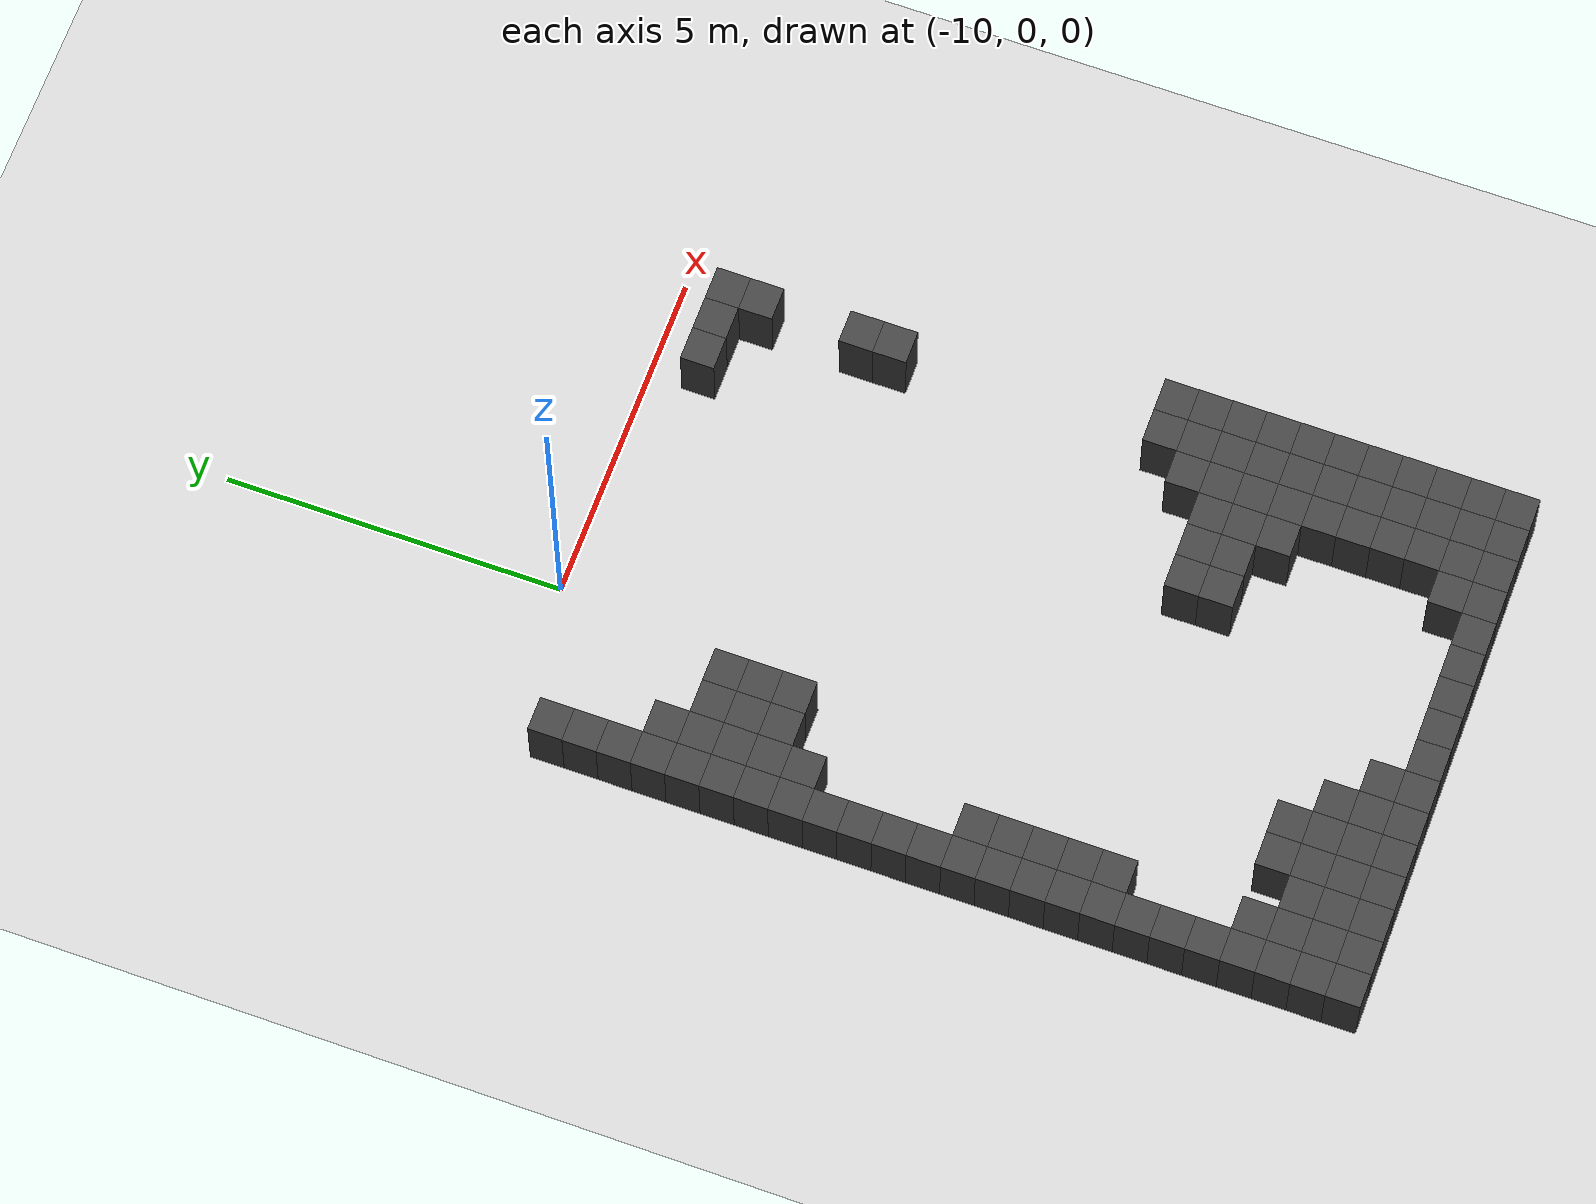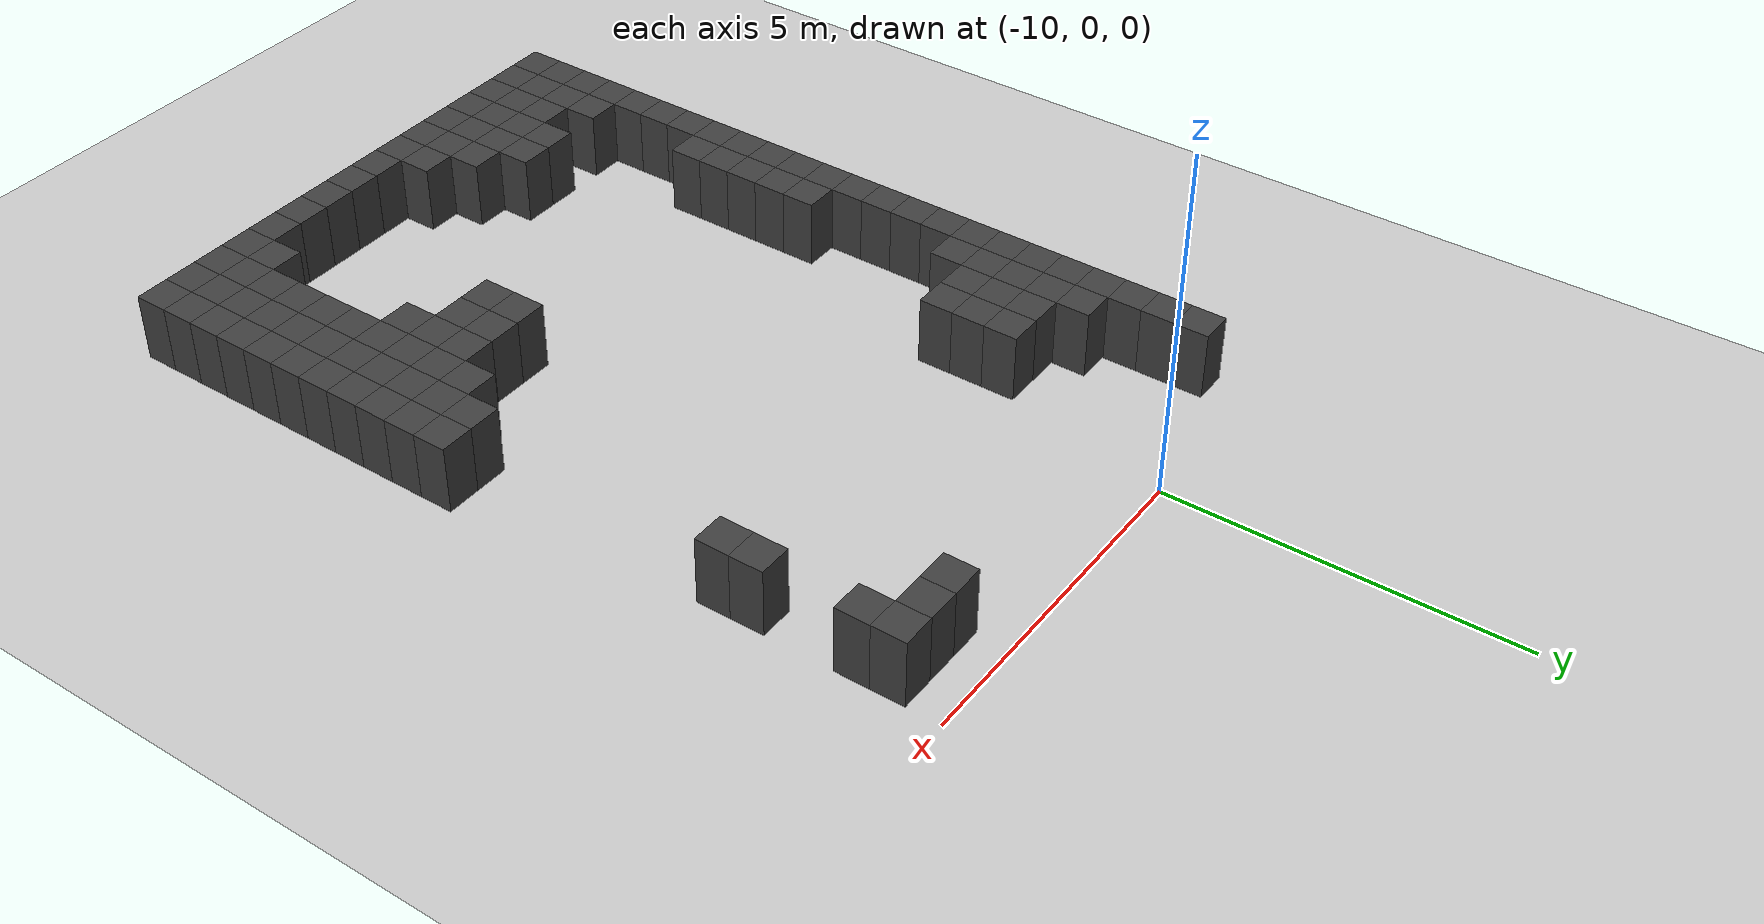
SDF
<sdf version="1.7">
 <world name="map_9405">
  <model name="ground_plane">
   <static>true</static>
   <link name="link">
    <collision name="collision">
     <geometry><plane><normal>0 0 1</normal><size>200 200</size></plane></geometry>
    </collision>
    <visual name="visual">
     <geometry><plane><normal>0 0 1</normal><size>200 200</size></plane></geometry>
     <material><ambient>0.8 0.8 0.8 1</ambient><diffuse>0.8 0.8 0.8 1</diffuse></material>
    </visual>
   </link>
  </model>
  <model name="maze_environment">
   <static>true</static>
   <link name="wall_449">
    <pose>-12.250 -0.750 0.500 0 0 0</pose>
    <collision name="col"><geometry><box><size>0.5 0.5 1.0</size></box></geometry></collision>
    <visual name="vis">
     <geometry><box><size>0.5 0.5 1.0</size></box></geometry>
     <material><ambient>0.15 0.15 0.15 1</ambient><diffuse>0.25 0.25 0.25 1</diffuse></material>
    </visual>
   </link>
   <link name="wall_450">
    <pose>-6.250 -0.750 0.500 0 0 0</pose>
    <collision name="col"><geometry><box><size>0.5 0.5 1.0</size></box></geometry></collision>
    <visual name="vis">
     <geometry><box><size>0.5 0.5 1.0</size></box></geometry>
     <material><ambient>0.15 0.15 0.15 1</ambient><diffuse>0.25 0.25 0.25 1</diffuse></material>
    </visual>
   </link>
   <link name="wall_451">
    <pose>-5.750 -0.750 0.500 0 0 0</pose>
    <collision name="col"><geometry><box><size>0.5 0.5 1.0</size></box></geometry></collision>
    <visual name="vis">
     <geometry><box><size>0.5 0.5 1.0</size></box></geometry>
     <material><ambient>0.15 0.15 0.15 1</ambient><diffuse>0.25 0.25 0.25 1</diffuse></material>
    </visual>
   </link>
   <link name="wall_452">
    <pose>-5.250 -0.750 0.500 0 0 0</pose>
    <collision name="col"><geometry><box><size>0.5 0.5 1.0</size></box></geometry></collision>
    <visual name="vis">
     <geometry><box><size>0.5 0.5 1.0</size></box></geometry>
     <material><ambient>0.15 0.15 0.15 1</ambient><diffuse>0.25 0.25 0.25 1</diffuse></material>
    </visual>
   </link>
   <link name="wall_477">
    <pose>-12.250 -1.250 0.500 0 0 0</pose>
    <collision name="col"><geometry><box><size>0.5 0.5 1.0</size></box></geometry></collision>
    <visual name="vis">
     <geometry><box><size>0.5 0.5 1.0</size></box></geometry>
     <material><ambient>0.15 0.15 0.15 1</ambient><diffuse>0.25 0.25 0.25 1</diffuse></material>
    </visual>
   </link>
   <link name="wall_478">
    <pose>-5.250 -1.250 0.500 0 0 0</pose>
    <collision name="col"><geometry><box><size>0.5 0.5 1.0</size></box></geometry></collision>
    <visual name="vis">
     <geometry><box><size>0.5 0.5 1.0</size></box></geometry>
     <material><ambient>0.15 0.15 0.15 1</ambient><diffuse>0.25 0.25 0.25 1</diffuse></material>
    </visual>
   </link>
   <link name="wall_501">
    <pose>-12.250 -1.750 0.500 0 0 0</pose>
    <collision name="col"><geometry><box><size>0.5 0.5 1.0</size></box></geometry></collision>
    <visual name="vis">
     <geometry><box><size>0.5 0.5 1.0</size></box></geometry>
     <material><ambient>0.15 0.15 0.15 1</ambient><diffuse>0.25 0.25 0.25 1</diffuse></material>
    </visual>
   </link>
   <link name="wall_517">
    <pose>-12.250 -2.250 0.500 0 0 0</pose>
    <collision name="col"><geometry><box><size>0.5 0.5 1.0</size></box></geometry></collision>
    <visual name="vis">
     <geometry><box><size>0.5 0.5 1.0</size></box></geometry>
     <material><ambient>0.15 0.15 0.15 1</ambient><diffuse>0.25 0.25 0.25 1</diffuse></material>
    </visual>
   </link>
   <link name="wall_518">
    <pose>-11.750 -2.250 0.500 0 0 0</pose>
    <collision name="col"><geometry><box><size>0.5 0.5 1.0</size></box></geometry></collision>
    <visual name="vis">
     <geometry><box><size>0.5 0.5 1.0</size></box></geometry>
     <material><ambient>0.15 0.15 0.15 1</ambient><diffuse>0.25 0.25 0.25 1</diffuse></material>
    </visual>
   </link>
   <link name="wall_526">
    <pose>-12.250 -2.750 0.500 0 0 0</pose>
    <collision name="col"><geometry><box><size>0.5 0.5 1.0</size></box></geometry></collision>
    <visual name="vis">
     <geometry><box><size>0.5 0.5 1.0</size></box></geometry>
     <material><ambient>0.15 0.15 0.15 1</ambient><diffuse>0.25 0.25 0.25 1</diffuse></material>
    </visual>
   </link>
   <link name="wall_527">
    <pose>-11.750 -2.750 0.500 0 0 0</pose>
    <collision name="col"><geometry><box><size>0.5 0.5 1.0</size></box></geometry></collision>
    <visual name="vis">
     <geometry><box><size>0.5 0.5 1.0</size></box></geometry>
     <material><ambient>0.15 0.15 0.15 1</ambient><diffuse>0.25 0.25 0.25 1</diffuse></material>
    </visual>
   </link>
   <link name="wall_528">
    <pose>-11.250 -2.750 0.500 0 0 0</pose>
    <collision name="col"><geometry><box><size>0.5 0.5 1.0</size></box></geometry></collision>
    <visual name="vis">
     <geometry><box><size>0.5 0.5 1.0</size></box></geometry>
     <material><ambient>0.15 0.15 0.15 1</ambient><diffuse>0.25 0.25 0.25 1</diffuse></material>
    </visual>
   </link>
   <link name="wall_529">
    <pose>-10.750 -2.750 0.500 0 0 0</pose>
    <collision name="col"><geometry><box><size>0.5 0.5 1.0</size></box></geometry></collision>
    <visual name="vis">
     <geometry><box><size>0.5 0.5 1.0</size></box></geometry>
     <material><ambient>0.15 0.15 0.15 1</ambient><diffuse>0.25 0.25 0.25 1</diffuse></material>
    </visual>
   </link>
   <link name="wall_530">
    <pose>-5.250 -2.750 0.500 0 0 0</pose>
    <collision name="col"><geometry><box><size>0.5 0.5 1.0</size></box></geometry></collision>
    <visual name="vis">
     <geometry><box><size>0.5 0.5 1.0</size></box></geometry>
     <material><ambient>0.15 0.15 0.15 1</ambient><diffuse>0.25 0.25 0.25 1</diffuse></material>
    </visual>
   </link>
   <link name="wall_544">
    <pose>-12.250 -3.250 0.500 0 0 0</pose>
    <collision name="col"><geometry><box><size>0.5 0.5 1.0</size></box></geometry></collision>
    <visual name="vis">
     <geometry><box><size>0.5 0.5 1.0</size></box></geometry>
     <material><ambient>0.15 0.15 0.15 1</ambient><diffuse>0.25 0.25 0.25 1</diffuse></material>
    </visual>
   </link>
   <link name="wall_545">
    <pose>-11.750 -3.250 0.500 0 0 0</pose>
    <collision name="col"><geometry><box><size>0.5 0.5 1.0</size></box></geometry></collision>
    <visual name="vis">
     <geometry><box><size>0.5 0.5 1.0</size></box></geometry>
     <material><ambient>0.15 0.15 0.15 1</ambient><diffuse>0.25 0.25 0.25 1</diffuse></material>
    </visual>
   </link>
   <link name="wall_546">
    <pose>-11.250 -3.250 0.500 0 0 0</pose>
    <collision name="col"><geometry><box><size>0.5 0.5 1.0</size></box></geometry></collision>
    <visual name="vis">
     <geometry><box><size>0.5 0.5 1.0</size></box></geometry>
     <material><ambient>0.15 0.15 0.15 1</ambient><diffuse>0.25 0.25 0.25 1</diffuse></material>
    </visual>
   </link>
   <link name="wall_547">
    <pose>-10.750 -3.250 0.500 0 0 0</pose>
    <collision name="col"><geometry><box><size>0.5 0.5 1.0</size></box></geometry></collision>
    <visual name="vis">
     <geometry><box><size>0.5 0.5 1.0</size></box></geometry>
     <material><ambient>0.15 0.15 0.15 1</ambient><diffuse>0.25 0.25 0.25 1</diffuse></material>
    </visual>
   </link>
   <link name="wall_548">
    <pose>-5.250 -3.250 0.500 0 0 0</pose>
    <collision name="col"><geometry><box><size>0.5 0.5 1.0</size></box></geometry></collision>
    <visual name="vis">
     <geometry><box><size>0.5 0.5 1.0</size></box></geometry>
     <material><ambient>0.15 0.15 0.15 1</ambient><diffuse>0.25 0.25 0.25 1</diffuse></material>
    </visual>
   </link>
   <link name="wall_561">
    <pose>-12.250 -3.750 0.500 0 0 0</pose>
    <collision name="col"><geometry><box><size>0.5 0.5 1.0</size></box></geometry></collision>
    <visual name="vis">
     <geometry><box><size>0.5 0.5 1.0</size></box></geometry>
     <material><ambient>0.15 0.15 0.15 1</ambient><diffuse>0.25 0.25 0.25 1</diffuse></material>
    </visual>
   </link>
   <link name="wall_562">
    <pose>-11.750 -3.750 0.500 0 0 0</pose>
    <collision name="col"><geometry><box><size>0.5 0.5 1.0</size></box></geometry></collision>
    <visual name="vis">
     <geometry><box><size>0.5 0.5 1.0</size></box></geometry>
     <material><ambient>0.15 0.15 0.15 1</ambient><diffuse>0.25 0.25 0.25 1</diffuse></material>
    </visual>
   </link>
   <link name="wall_563">
    <pose>-11.250 -3.750 0.500 0 0 0</pose>
    <collision name="col"><geometry><box><size>0.5 0.5 1.0</size></box></geometry></collision>
    <visual name="vis">
     <geometry><box><size>0.5 0.5 1.0</size></box></geometry>
     <material><ambient>0.15 0.15 0.15 1</ambient><diffuse>0.25 0.25 0.25 1</diffuse></material>
    </visual>
   </link>
   <link name="wall_564">
    <pose>-10.750 -3.750 0.500 0 0 0</pose>
    <collision name="col"><geometry><box><size>0.5 0.5 1.0</size></box></geometry></collision>
    <visual name="vis">
     <geometry><box><size>0.5 0.5 1.0</size></box></geometry>
     <material><ambient>0.15 0.15 0.15 1</ambient><diffuse>0.25 0.25 0.25 1</diffuse></material>
    </visual>
   </link>
   <link name="wall_578">
    <pose>-12.250 -4.250 0.500 0 0 0</pose>
    <collision name="col"><geometry><box><size>0.5 0.5 1.0</size></box></geometry></collision>
    <visual name="vis">
     <geometry><box><size>0.5 0.5 1.0</size></box></geometry>
     <material><ambient>0.15 0.15 0.15 1</ambient><diffuse>0.25 0.25 0.25 1</diffuse></material>
    </visual>
   </link>
   <link name="wall_579">
    <pose>-11.750 -4.250 0.500 0 0 0</pose>
    <collision name="col"><geometry><box><size>0.5 0.5 1.0</size></box></geometry></collision>
    <visual name="vis">
     <geometry><box><size>0.5 0.5 1.0</size></box></geometry>
     <material><ambient>0.15 0.15 0.15 1</ambient><diffuse>0.25 0.25 0.25 1</diffuse></material>
    </visual>
   </link>
   <link name="wall_592">
    <pose>-12.250 -4.750 0.500 0 0 0</pose>
    <collision name="col"><geometry><box><size>0.5 0.5 1.0</size></box></geometry></collision>
    <visual name="vis">
     <geometry><box><size>0.5 0.5 1.0</size></box></geometry>
     <material><ambient>0.15 0.15 0.15 1</ambient><diffuse>0.25 0.25 0.25 1</diffuse></material>
    </visual>
   </link>
   <link name="wall_603">
    <pose>-12.250 -5.250 0.500 0 0 0</pose>
    <collision name="col"><geometry><box><size>0.5 0.5 1.0</size></box></geometry></collision>
    <visual name="vis">
     <geometry><box><size>0.5 0.5 1.0</size></box></geometry>
     <material><ambient>0.15 0.15 0.15 1</ambient><diffuse>0.25 0.25 0.25 1</diffuse></material>
    </visual>
   </link>
   <link name="wall_613">
    <pose>-12.250 -5.750 0.500 0 0 0</pose>
    <collision name="col"><geometry><box><size>0.5 0.5 1.0</size></box></geometry></collision>
    <visual name="vis">
     <geometry><box><size>0.5 0.5 1.0</size></box></geometry>
     <material><ambient>0.15 0.15 0.15 1</ambient><diffuse>0.25 0.25 0.25 1</diffuse></material>
    </visual>
   </link>
   <link name="wall_624">
    <pose>-12.250 -6.250 0.500 0 0 0</pose>
    <collision name="col"><geometry><box><size>0.5 0.5 1.0</size></box></geometry></collision>
    <visual name="vis">
     <geometry><box><size>0.5 0.5 1.0</size></box></geometry>
     <material><ambient>0.15 0.15 0.15 1</ambient><diffuse>0.25 0.25 0.25 1</diffuse></material>
    </visual>
   </link>
   <link name="wall_638">
    <pose>-12.250 -6.750 0.500 0 0 0</pose>
    <collision name="col"><geometry><box><size>0.5 0.5 1.0</size></box></geometry></collision>
    <visual name="vis">
     <geometry><box><size>0.5 0.5 1.0</size></box></geometry>
     <material><ambient>0.15 0.15 0.15 1</ambient><diffuse>0.25 0.25 0.25 1</diffuse></material>
    </visual>
   </link>
   <link name="wall_639">
    <pose>-11.750 -6.750 0.500 0 0 0</pose>
    <collision name="col"><geometry><box><size>0.5 0.5 1.0</size></box></geometry></collision>
    <visual name="vis">
     <geometry><box><size>0.5 0.5 1.0</size></box></geometry>
     <material><ambient>0.15 0.15 0.15 1</ambient><diffuse>0.25 0.25 0.25 1</diffuse></material>
    </visual>
   </link>
   <link name="wall_656">
    <pose>-12.250 -7.250 0.500 0 0 0</pose>
    <collision name="col"><geometry><box><size>0.5 0.5 1.0</size></box></geometry></collision>
    <visual name="vis">
     <geometry><box><size>0.5 0.5 1.0</size></box></geometry>
     <material><ambient>0.15 0.15 0.15 1</ambient><diffuse>0.25 0.25 0.25 1</diffuse></material>
    </visual>
   </link>
   <link name="wall_657">
    <pose>-11.750 -7.250 0.500 0 0 0</pose>
    <collision name="col"><geometry><box><size>0.5 0.5 1.0</size></box></geometry></collision>
    <visual name="vis">
     <geometry><box><size>0.5 0.5 1.0</size></box></geometry>
     <material><ambient>0.15 0.15 0.15 1</ambient><diffuse>0.25 0.25 0.25 1</diffuse></material>
    </visual>
   </link>
   <link name="wall_658">
    <pose>-5.250 -7.250 0.500 0 0 0</pose>
    <collision name="col"><geometry><box><size>0.5 0.5 1.0</size></box></geometry></collision>
    <visual name="vis">
     <geometry><box><size>0.5 0.5 1.0</size></box></geometry>
     <material><ambient>0.15 0.15 0.15 1</ambient><diffuse>0.25 0.25 0.25 1</diffuse></material>
    </visual>
   </link>
   <link name="wall_659">
    <pose>-4.750 -7.250 0.500 0 0 0</pose>
    <collision name="col"><geometry><box><size>0.5 0.5 1.0</size></box></geometry></collision>
    <visual name="vis">
     <geometry><box><size>0.5 0.5 1.0</size></box></geometry>
     <material><ambient>0.15 0.15 0.15 1</ambient><diffuse>0.25 0.25 0.25 1</diffuse></material>
    </visual>
   </link>
   <link name="wall_674">
    <pose>-12.250 -7.750 0.500 0 0 0</pose>
    <collision name="col"><geometry><box><size>0.5 0.5 1.0</size></box></geometry></collision>
    <visual name="vis">
     <geometry><box><size>0.5 0.5 1.0</size></box></geometry>
     <material><ambient>0.15 0.15 0.15 1</ambient><diffuse>0.25 0.25 0.25 1</diffuse></material>
    </visual>
   </link>
   <link name="wall_675">
    <pose>-11.750 -7.750 0.500 0 0 0</pose>
    <collision name="col"><geometry><box><size>0.5 0.5 1.0</size></box></geometry></collision>
    <visual name="vis">
     <geometry><box><size>0.5 0.5 1.0</size></box></geometry>
     <material><ambient>0.15 0.15 0.15 1</ambient><diffuse>0.25 0.25 0.25 1</diffuse></material>
    </visual>
   </link>
   <link name="wall_676">
    <pose>-5.750 -7.750 0.500 0 0 0</pose>
    <collision name="col"><geometry><box><size>0.5 0.5 1.0</size></box></geometry></collision>
    <visual name="vis">
     <geometry><box><size>0.5 0.5 1.0</size></box></geometry>
     <material><ambient>0.15 0.15 0.15 1</ambient><diffuse>0.25 0.25 0.25 1</diffuse></material>
    </visual>
   </link>
   <link name="wall_677">
    <pose>-5.250 -7.750 0.500 0 0 0</pose>
    <collision name="col"><geometry><box><size>0.5 0.5 1.0</size></box></geometry></collision>
    <visual name="vis">
     <geometry><box><size>0.5 0.5 1.0</size></box></geometry>
     <material><ambient>0.15 0.15 0.15 1</ambient><diffuse>0.25 0.25 0.25 1</diffuse></material>
    </visual>
   </link>
   <link name="wall_678">
    <pose>-4.750 -7.750 0.500 0 0 0</pose>
    <collision name="col"><geometry><box><size>0.5 0.5 1.0</size></box></geometry></collision>
    <visual name="vis">
     <geometry><box><size>0.5 0.5 1.0</size></box></geometry>
     <material><ambient>0.15 0.15 0.15 1</ambient><diffuse>0.25 0.25 0.25 1</diffuse></material>
    </visual>
   </link>
   <link name="wall_692">
    <pose>-12.250 -8.250 0.500 0 0 0</pose>
    <collision name="col"><geometry><box><size>0.5 0.5 1.0</size></box></geometry></collision>
    <visual name="vis">
     <geometry><box><size>0.5 0.5 1.0</size></box></geometry>
     <material><ambient>0.15 0.15 0.15 1</ambient><diffuse>0.25 0.25 0.25 1</diffuse></material>
    </visual>
   </link>
   <link name="wall_693">
    <pose>-11.750 -8.250 0.500 0 0 0</pose>
    <collision name="col"><geometry><box><size>0.5 0.5 1.0</size></box></geometry></collision>
    <visual name="vis">
     <geometry><box><size>0.5 0.5 1.0</size></box></geometry>
     <material><ambient>0.15 0.15 0.15 1</ambient><diffuse>0.25 0.25 0.25 1</diffuse></material>
    </visual>
   </link>
   <link name="wall_694">
    <pose>-7.250 -8.250 0.500 0 0 0</pose>
    <collision name="col"><geometry><box><size>0.5 0.5 1.0</size></box></geometry></collision>
    <visual name="vis">
     <geometry><box><size>0.5 0.5 1.0</size></box></geometry>
     <material><ambient>0.15 0.15 0.15 1</ambient><diffuse>0.25 0.25 0.25 1</diffuse></material>
    </visual>
   </link>
   <link name="wall_695">
    <pose>-6.750 -8.250 0.500 0 0 0</pose>
    <collision name="col"><geometry><box><size>0.5 0.5 1.0</size></box></geometry></collision>
    <visual name="vis">
     <geometry><box><size>0.5 0.5 1.0</size></box></geometry>
     <material><ambient>0.15 0.15 0.15 1</ambient><diffuse>0.25 0.25 0.25 1</diffuse></material>
    </visual>
   </link>
   <link name="wall_696">
    <pose>-6.250 -8.250 0.500 0 0 0</pose>
    <collision name="col"><geometry><box><size>0.5 0.5 1.0</size></box></geometry></collision>
    <visual name="vis">
     <geometry><box><size>0.5 0.5 1.0</size></box></geometry>
     <material><ambient>0.15 0.15 0.15 1</ambient><diffuse>0.25 0.25 0.25 1</diffuse></material>
    </visual>
   </link>
   <link name="wall_697">
    <pose>-5.750 -8.250 0.500 0 0 0</pose>
    <collision name="col"><geometry><box><size>0.5 0.5 1.0</size></box></geometry></collision>
    <visual name="vis">
     <geometry><box><size>0.5 0.5 1.0</size></box></geometry>
     <material><ambient>0.15 0.15 0.15 1</ambient><diffuse>0.25 0.25 0.25 1</diffuse></material>
    </visual>
   </link>
   <link name="wall_698">
    <pose>-5.250 -8.250 0.500 0 0 0</pose>
    <collision name="col"><geometry><box><size>0.5 0.5 1.0</size></box></geometry></collision>
    <visual name="vis">
     <geometry><box><size>0.5 0.5 1.0</size></box></geometry>
     <material><ambient>0.15 0.15 0.15 1</ambient><diffuse>0.25 0.25 0.25 1</diffuse></material>
    </visual>
   </link>
   <link name="wall_699">
    <pose>-4.750 -8.250 0.500 0 0 0</pose>
    <collision name="col"><geometry><box><size>0.5 0.5 1.0</size></box></geometry></collision>
    <visual name="vis">
     <geometry><box><size>0.5 0.5 1.0</size></box></geometry>
     <material><ambient>0.15 0.15 0.15 1</ambient><diffuse>0.25 0.25 0.25 1</diffuse></material>
    </visual>
   </link>
   <link name="wall_709">
    <pose>-12.250 -8.750 0.500 0 0 0</pose>
    <collision name="col"><geometry><box><size>0.5 0.5 1.0</size></box></geometry></collision>
    <visual name="vis">
     <geometry><box><size>0.5 0.5 1.0</size></box></geometry>
     <material><ambient>0.15 0.15 0.15 1</ambient><diffuse>0.25 0.25 0.25 1</diffuse></material>
    </visual>
   </link>
   <link name="wall_710">
    <pose>-11.750 -8.750 0.500 0 0 0</pose>
    <collision name="col"><geometry><box><size>0.5 0.5 1.0</size></box></geometry></collision>
    <visual name="vis">
     <geometry><box><size>0.5 0.5 1.0</size></box></geometry>
     <material><ambient>0.15 0.15 0.15 1</ambient><diffuse>0.25 0.25 0.25 1</diffuse></material>
    </visual>
   </link>
   <link name="wall_711">
    <pose>-7.250 -8.750 0.500 0 0 0</pose>
    <collision name="col"><geometry><box><size>0.5 0.5 1.0</size></box></geometry></collision>
    <visual name="vis">
     <geometry><box><size>0.5 0.5 1.0</size></box></geometry>
     <material><ambient>0.15 0.15 0.15 1</ambient><diffuse>0.25 0.25 0.25 1</diffuse></material>
    </visual>
   </link>
   <link name="wall_712">
    <pose>-6.750 -8.750 0.500 0 0 0</pose>
    <collision name="col"><geometry><box><size>0.5 0.5 1.0</size></box></geometry></collision>
    <visual name="vis">
     <geometry><box><size>0.5 0.5 1.0</size></box></geometry>
     <material><ambient>0.15 0.15 0.15 1</ambient><diffuse>0.25 0.25 0.25 1</diffuse></material>
    </visual>
   </link>
   <link name="wall_713">
    <pose>-6.250 -8.750 0.500 0 0 0</pose>
    <collision name="col"><geometry><box><size>0.5 0.5 1.0</size></box></geometry></collision>
    <visual name="vis">
     <geometry><box><size>0.5 0.5 1.0</size></box></geometry>
     <material><ambient>0.15 0.15 0.15 1</ambient><diffuse>0.25 0.25 0.25 1</diffuse></material>
    </visual>
   </link>
   <link name="wall_714">
    <pose>-5.750 -8.750 0.500 0 0 0</pose>
    <collision name="col"><geometry><box><size>0.5 0.5 1.0</size></box></geometry></collision>
    <visual name="vis">
     <geometry><box><size>0.5 0.5 1.0</size></box></geometry>
     <material><ambient>0.15 0.15 0.15 1</ambient><diffuse>0.25 0.25 0.25 1</diffuse></material>
    </visual>
   </link>
   <link name="wall_715">
    <pose>-5.250 -8.750 0.500 0 0 0</pose>
    <collision name="col"><geometry><box><size>0.5 0.5 1.0</size></box></geometry></collision>
    <visual name="vis">
     <geometry><box><size>0.5 0.5 1.0</size></box></geometry>
     <material><ambient>0.15 0.15 0.15 1</ambient><diffuse>0.25 0.25 0.25 1</diffuse></material>
    </visual>
   </link>
   <link name="wall_716">
    <pose>-4.750 -8.750 0.500 0 0 0</pose>
    <collision name="col"><geometry><box><size>0.5 0.5 1.0</size></box></geometry></collision>
    <visual name="vis">
     <geometry><box><size>0.5 0.5 1.0</size></box></geometry>
     <material><ambient>0.15 0.15 0.15 1</ambient><diffuse>0.25 0.25 0.25 1</diffuse></material>
    </visual>
   </link>
   <link name="wall_726">
    <pose>-12.250 -9.250 0.500 0 0 0</pose>
    <collision name="col"><geometry><box><size>0.5 0.5 1.0</size></box></geometry></collision>
    <visual name="vis">
     <geometry><box><size>0.5 0.5 1.0</size></box></geometry>
     <material><ambient>0.15 0.15 0.15 1</ambient><diffuse>0.25 0.25 0.25 1</diffuse></material>
    </visual>
   </link>
   <link name="wall_727">
    <pose>-6.250 -9.250 0.500 0 0 0</pose>
    <collision name="col"><geometry><box><size>0.5 0.5 1.0</size></box></geometry></collision>
    <visual name="vis">
     <geometry><box><size>0.5 0.5 1.0</size></box></geometry>
     <material><ambient>0.15 0.15 0.15 1</ambient><diffuse>0.25 0.25 0.25 1</diffuse></material>
    </visual>
   </link>
   <link name="wall_728">
    <pose>-5.750 -9.250 0.500 0 0 0</pose>
    <collision name="col"><geometry><box><size>0.5 0.5 1.0</size></box></geometry></collision>
    <visual name="vis">
     <geometry><box><size>0.5 0.5 1.0</size></box></geometry>
     <material><ambient>0.15 0.15 0.15 1</ambient><diffuse>0.25 0.25 0.25 1</diffuse></material>
    </visual>
   </link>
   <link name="wall_729">
    <pose>-5.250 -9.250 0.500 0 0 0</pose>
    <collision name="col"><geometry><box><size>0.5 0.5 1.0</size></box></geometry></collision>
    <visual name="vis">
     <geometry><box><size>0.5 0.5 1.0</size></box></geometry>
     <material><ambient>0.15 0.15 0.15 1</ambient><diffuse>0.25 0.25 0.25 1</diffuse></material>
    </visual>
   </link>
   <link name="wall_730">
    <pose>-4.750 -9.250 0.500 0 0 0</pose>
    <collision name="col"><geometry><box><size>0.5 0.5 1.0</size></box></geometry></collision>
    <visual name="vis">
     <geometry><box><size>0.5 0.5 1.0</size></box></geometry>
     <material><ambient>0.15 0.15 0.15 1</ambient><diffuse>0.25 0.25 0.25 1</diffuse></material>
    </visual>
   </link>
   <link name="wall_739">
    <pose>-12.250 -9.750 0.500 0 0 0</pose>
    <collision name="col"><geometry><box><size>0.5 0.5 1.0</size></box></geometry></collision>
    <visual name="vis">
     <geometry><box><size>0.5 0.5 1.0</size></box></geometry>
     <material><ambient>0.15 0.15 0.15 1</ambient><diffuse>0.25 0.25 0.25 1</diffuse></material>
    </visual>
   </link>
   <link name="wall_740">
    <pose>-5.750 -9.750 0.500 0 0 0</pose>
    <collision name="col"><geometry><box><size>0.5 0.5 1.0</size></box></geometry></collision>
    <visual name="vis">
     <geometry><box><size>0.5 0.5 1.0</size></box></geometry>
     <material><ambient>0.15 0.15 0.15 1</ambient><diffuse>0.25 0.25 0.25 1</diffuse></material>
    </visual>
   </link>
   <link name="wall_741">
    <pose>-5.250 -9.750 0.500 0 0 0</pose>
    <collision name="col"><geometry><box><size>0.5 0.5 1.0</size></box></geometry></collision>
    <visual name="vis">
     <geometry><box><size>0.5 0.5 1.0</size></box></geometry>
     <material><ambient>0.15 0.15 0.15 1</ambient><diffuse>0.25 0.25 0.25 1</diffuse></material>
    </visual>
   </link>
   <link name="wall_742">
    <pose>-4.750 -9.750 0.500 0 0 0</pose>
    <collision name="col"><geometry><box><size>0.5 0.5 1.0</size></box></geometry></collision>
    <visual name="vis">
     <geometry><box><size>0.5 0.5 1.0</size></box></geometry>
     <material><ambient>0.15 0.15 0.15 1</ambient><diffuse>0.25 0.25 0.25 1</diffuse></material>
    </visual>
   </link>
   <link name="wall_751">
    <pose>-12.250 -10.250 0.500 0 0 0</pose>
    <collision name="col"><geometry><box><size>0.5 0.5 1.0</size></box></geometry></collision>
    <visual name="vis">
     <geometry><box><size>0.5 0.5 1.0</size></box></geometry>
     <material><ambient>0.15 0.15 0.15 1</ambient><diffuse>0.25 0.25 0.25 1</diffuse></material>
    </visual>
   </link>
   <link name="wall_752">
    <pose>-5.750 -10.250 0.500 0 0 0</pose>
    <collision name="col"><geometry><box><size>0.5 0.5 1.0</size></box></geometry></collision>
    <visual name="vis">
     <geometry><box><size>0.5 0.5 1.0</size></box></geometry>
     <material><ambient>0.15 0.15 0.15 1</ambient><diffuse>0.25 0.25 0.25 1</diffuse></material>
    </visual>
   </link>
   <link name="wall_753">
    <pose>-5.250 -10.250 0.500 0 0 0</pose>
    <collision name="col"><geometry><box><size>0.5 0.5 1.0</size></box></geometry></collision>
    <visual name="vis">
     <geometry><box><size>0.5 0.5 1.0</size></box></geometry>
     <material><ambient>0.15 0.15 0.15 1</ambient><diffuse>0.25 0.25 0.25 1</diffuse></material>
    </visual>
   </link>
   <link name="wall_754">
    <pose>-4.750 -10.250 0.500 0 0 0</pose>
    <collision name="col"><geometry><box><size>0.5 0.5 1.0</size></box></geometry></collision>
    <visual name="vis">
     <geometry><box><size>0.5 0.5 1.0</size></box></geometry>
     <material><ambient>0.15 0.15 0.15 1</ambient><diffuse>0.25 0.25 0.25 1</diffuse></material>
    </visual>
   </link>
   <link name="wall_764">
    <pose>-12.250 -10.750 0.500 0 0 0</pose>
    <collision name="col"><geometry><box><size>0.5 0.5 1.0</size></box></geometry></collision>
    <visual name="vis">
     <geometry><box><size>0.5 0.5 1.0</size></box></geometry>
     <material><ambient>0.15 0.15 0.15 1</ambient><diffuse>0.25 0.25 0.25 1</diffuse></material>
    </visual>
   </link>
   <link name="wall_765">
    <pose>-11.750 -10.750 0.500 0 0 0</pose>
    <collision name="col"><geometry><box><size>0.5 0.5 1.0</size></box></geometry></collision>
    <visual name="vis">
     <geometry><box><size>0.5 0.5 1.0</size></box></geometry>
     <material><ambient>0.15 0.15 0.15 1</ambient><diffuse>0.25 0.25 0.25 1</diffuse></material>
    </visual>
   </link>
   <link name="wall_766">
    <pose>-10.750 -10.750 0.500 0 0 0</pose>
    <collision name="col"><geometry><box><size>0.5 0.5 1.0</size></box></geometry></collision>
    <visual name="vis">
     <geometry><box><size>0.5 0.5 1.0</size></box></geometry>
     <material><ambient>0.15 0.15 0.15 1</ambient><diffuse>0.25 0.25 0.25 1</diffuse></material>
    </visual>
   </link>
   <link name="wall_767">
    <pose>-10.250 -10.750 0.500 0 0 0</pose>
    <collision name="col"><geometry><box><size>0.5 0.5 1.0</size></box></geometry></collision>
    <visual name="vis">
     <geometry><box><size>0.5 0.5 1.0</size></box></geometry>
     <material><ambient>0.15 0.15 0.15 1</ambient><diffuse>0.25 0.25 0.25 1</diffuse></material>
    </visual>
   </link>
   <link name="wall_768">
    <pose>-5.750 -10.750 0.500 0 0 0</pose>
    <collision name="col"><geometry><box><size>0.5 0.5 1.0</size></box></geometry></collision>
    <visual name="vis">
     <geometry><box><size>0.5 0.5 1.0</size></box></geometry>
     <material><ambient>0.15 0.15 0.15 1</ambient><diffuse>0.25 0.25 0.25 1</diffuse></material>
    </visual>
   </link>
   <link name="wall_769">
    <pose>-5.250 -10.750 0.500 0 0 0</pose>
    <collision name="col"><geometry><box><size>0.5 0.5 1.0</size></box></geometry></collision>
    <visual name="vis">
     <geometry><box><size>0.5 0.5 1.0</size></box></geometry>
     <material><ambient>0.15 0.15 0.15 1</ambient><diffuse>0.25 0.25 0.25 1</diffuse></material>
    </visual>
   </link>
   <link name="wall_770">
    <pose>-4.750 -10.750 0.500 0 0 0</pose>
    <collision name="col"><geometry><box><size>0.5 0.5 1.0</size></box></geometry></collision>
    <visual name="vis">
     <geometry><box><size>0.5 0.5 1.0</size></box></geometry>
     <material><ambient>0.15 0.15 0.15 1</ambient><diffuse>0.25 0.25 0.25 1</diffuse></material>
    </visual>
   </link>
   <link name="wall_782">
    <pose>-12.250 -11.250 0.500 0 0 0</pose>
    <collision name="col"><geometry><box><size>0.5 0.5 1.0</size></box></geometry></collision>
    <visual name="vis">
     <geometry><box><size>0.5 0.5 1.0</size></box></geometry>
     <material><ambient>0.15 0.15 0.15 1</ambient><diffuse>0.25 0.25 0.25 1</diffuse></material>
    </visual>
   </link>
   <link name="wall_783">
    <pose>-11.750 -11.250 0.500 0 0 0</pose>
    <collision name="col"><geometry><box><size>0.5 0.5 1.0</size></box></geometry></collision>
    <visual name="vis">
     <geometry><box><size>0.5 0.5 1.0</size></box></geometry>
     <material><ambient>0.15 0.15 0.15 1</ambient><diffuse>0.25 0.25 0.25 1</diffuse></material>
    </visual>
   </link>
   <link name="wall_784">
    <pose>-11.250 -11.250 0.500 0 0 0</pose>
    <collision name="col"><geometry><box><size>0.5 0.5 1.0</size></box></geometry></collision>
    <visual name="vis">
     <geometry><box><size>0.5 0.5 1.0</size></box></geometry>
     <material><ambient>0.15 0.15 0.15 1</ambient><diffuse>0.25 0.25 0.25 1</diffuse></material>
    </visual>
   </link>
   <link name="wall_785">
    <pose>-10.750 -11.250 0.500 0 0 0</pose>
    <collision name="col"><geometry><box><size>0.5 0.5 1.0</size></box></geometry></collision>
    <visual name="vis">
     <geometry><box><size>0.5 0.5 1.0</size></box></geometry>
     <material><ambient>0.15 0.15 0.15 1</ambient><diffuse>0.25 0.25 0.25 1</diffuse></material>
    </visual>
   </link>
   <link name="wall_786">
    <pose>-10.250 -11.250 0.500 0 0 0</pose>
    <collision name="col"><geometry><box><size>0.5 0.5 1.0</size></box></geometry></collision>
    <visual name="vis">
     <geometry><box><size>0.5 0.5 1.0</size></box></geometry>
     <material><ambient>0.15 0.15 0.15 1</ambient><diffuse>0.25 0.25 0.25 1</diffuse></material>
    </visual>
   </link>
   <link name="wall_787">
    <pose>-9.750 -11.250 0.500 0 0 0</pose>
    <collision name="col"><geometry><box><size>0.5 0.5 1.0</size></box></geometry></collision>
    <visual name="vis">
     <geometry><box><size>0.5 0.5 1.0</size></box></geometry>
     <material><ambient>0.15 0.15 0.15 1</ambient><diffuse>0.25 0.25 0.25 1</diffuse></material>
    </visual>
   </link>
   <link name="wall_788">
    <pose>-5.750 -11.250 0.500 0 0 0</pose>
    <collision name="col"><geometry><box><size>0.5 0.5 1.0</size></box></geometry></collision>
    <visual name="vis">
     <geometry><box><size>0.5 0.5 1.0</size></box></geometry>
     <material><ambient>0.15 0.15 0.15 1</ambient><diffuse>0.25 0.25 0.25 1</diffuse></material>
    </visual>
   </link>
   <link name="wall_789">
    <pose>-5.250 -11.250 0.500 0 0 0</pose>
    <collision name="col"><geometry><box><size>0.5 0.5 1.0</size></box></geometry></collision>
    <visual name="vis">
     <geometry><box><size>0.5 0.5 1.0</size></box></geometry>
     <material><ambient>0.15 0.15 0.15 1</ambient><diffuse>0.25 0.25 0.25 1</diffuse></material>
    </visual>
   </link>
   <link name="wall_790">
    <pose>-4.750 -11.250 0.500 0 0 0</pose>
    <collision name="col"><geometry><box><size>0.5 0.5 1.0</size></box></geometry></collision>
    <visual name="vis">
     <geometry><box><size>0.5 0.5 1.0</size></box></geometry>
     <material><ambient>0.15 0.15 0.15 1</ambient><diffuse>0.25 0.25 0.25 1</diffuse></material>
    </visual>
   </link>
   <link name="wall_807">
    <pose>-12.250 -11.750 0.500 0 0 0</pose>
    <collision name="col"><geometry><box><size>0.5 0.5 1.0</size></box></geometry></collision>
    <visual name="vis">
     <geometry><box><size>0.5 0.5 1.0</size></box></geometry>
     <material><ambient>0.15 0.15 0.15 1</ambient><diffuse>0.25 0.25 0.25 1</diffuse></material>
    </visual>
   </link>
   <link name="wall_808">
    <pose>-11.750 -11.750 0.500 0 0 0</pose>
    <collision name="col"><geometry><box><size>0.5 0.5 1.0</size></box></geometry></collision>
    <visual name="vis">
     <geometry><box><size>0.5 0.5 1.0</size></box></geometry>
     <material><ambient>0.15 0.15 0.15 1</ambient><diffuse>0.25 0.25 0.25 1</diffuse></material>
    </visual>
   </link>
   <link name="wall_809">
    <pose>-11.250 -11.750 0.500 0 0 0</pose>
    <collision name="col"><geometry><box><size>0.5 0.5 1.0</size></box></geometry></collision>
    <visual name="vis">
     <geometry><box><size>0.5 0.5 1.0</size></box></geometry>
     <material><ambient>0.15 0.15 0.15 1</ambient><diffuse>0.25 0.25 0.25 1</diffuse></material>
    </visual>
   </link>
   <link name="wall_810">
    <pose>-10.750 -11.750 0.500 0 0 0</pose>
    <collision name="col"><geometry><box><size>0.5 0.5 1.0</size></box></geometry></collision>
    <visual name="vis">
     <geometry><box><size>0.5 0.5 1.0</size></box></geometry>
     <material><ambient>0.15 0.15 0.15 1</ambient><diffuse>0.25 0.25 0.25 1</diffuse></material>
    </visual>
   </link>
   <link name="wall_811">
    <pose>-10.250 -11.750 0.500 0 0 0</pose>
    <collision name="col"><geometry><box><size>0.5 0.5 1.0</size></box></geometry></collision>
    <visual name="vis">
     <geometry><box><size>0.5 0.5 1.0</size></box></geometry>
     <material><ambient>0.15 0.15 0.15 1</ambient><diffuse>0.25 0.25 0.25 1</diffuse></material>
    </visual>
   </link>
   <link name="wall_812">
    <pose>-9.750 -11.750 0.500 0 0 0</pose>
    <collision name="col"><geometry><box><size>0.5 0.5 1.0</size></box></geometry></collision>
    <visual name="vis">
     <geometry><box><size>0.5 0.5 1.0</size></box></geometry>
     <material><ambient>0.15 0.15 0.15 1</ambient><diffuse>0.25 0.25 0.25 1</diffuse></material>
    </visual>
   </link>
   <link name="wall_813">
    <pose>-9.250 -11.750 0.500 0 0 0</pose>
    <collision name="col"><geometry><box><size>0.5 0.5 1.0</size></box></geometry></collision>
    <visual name="vis">
     <geometry><box><size>0.5 0.5 1.0</size></box></geometry>
     <material><ambient>0.15 0.15 0.15 1</ambient><diffuse>0.25 0.25 0.25 1</diffuse></material>
    </visual>
   </link>
   <link name="wall_814">
    <pose>-6.250 -11.750 0.500 0 0 0</pose>
    <collision name="col"><geometry><box><size>0.5 0.5 1.0</size></box></geometry></collision>
    <visual name="vis">
     <geometry><box><size>0.5 0.5 1.0</size></box></geometry>
     <material><ambient>0.15 0.15 0.15 1</ambient><diffuse>0.25 0.25 0.25 1</diffuse></material>
    </visual>
   </link>
   <link name="wall_815">
    <pose>-5.750 -11.750 0.500 0 0 0</pose>
    <collision name="col"><geometry><box><size>0.5 0.5 1.0</size></box></geometry></collision>
    <visual name="vis">
     <geometry><box><size>0.5 0.5 1.0</size></box></geometry>
     <material><ambient>0.15 0.15 0.15 1</ambient><diffuse>0.25 0.25 0.25 1</diffuse></material>
    </visual>
   </link>
   <link name="wall_816">
    <pose>-5.250 -11.750 0.500 0 0 0</pose>
    <collision name="col"><geometry><box><size>0.5 0.5 1.0</size></box></geometry></collision>
    <visual name="vis">
     <geometry><box><size>0.5 0.5 1.0</size></box></geometry>
     <material><ambient>0.15 0.15 0.15 1</ambient><diffuse>0.25 0.25 0.25 1</diffuse></material>
    </visual>
   </link>
   <link name="wall_817">
    <pose>-4.750 -11.750 0.500 0 0 0</pose>
    <collision name="col"><geometry><box><size>0.5 0.5 1.0</size></box></geometry></collision>
    <visual name="vis">
     <geometry><box><size>0.5 0.5 1.0</size></box></geometry>
     <material><ambient>0.15 0.15 0.15 1</ambient><diffuse>0.25 0.25 0.25 1</diffuse></material>
    </visual>
   </link>
   <link name="wall_847">
    <pose>-12.250 -12.250 0.500 0 0 0</pose>
    <collision name="col"><geometry><box><size>0.5 0.5 1.0</size></box></geometry></collision>
    <visual name="vis">
     <geometry><box><size>0.5 0.5 1.0</size></box></geometry>
     <material><ambient>0.15 0.15 0.15 1</ambient><diffuse>0.25 0.25 0.25 1</diffuse></material>
    </visual>
   </link>
   <link name="wall_848">
    <pose>-11.750 -12.250 0.500 0 0 0</pose>
    <collision name="col"><geometry><box><size>0.5 0.5 1.0</size></box></geometry></collision>
    <visual name="vis">
     <geometry><box><size>0.5 0.5 1.0</size></box></geometry>
     <material><ambient>0.15 0.15 0.15 1</ambient><diffuse>0.25 0.25 0.25 1</diffuse></material>
    </visual>
   </link>
   <link name="wall_849">
    <pose>-11.250 -12.250 0.500 0 0 0</pose>
    <collision name="col"><geometry><box><size>0.5 0.5 1.0</size></box></geometry></collision>
    <visual name="vis">
     <geometry><box><size>0.5 0.5 1.0</size></box></geometry>
     <material><ambient>0.15 0.15 0.15 1</ambient><diffuse>0.25 0.25 0.25 1</diffuse></material>
    </visual>
   </link>
   <link name="wall_850">
    <pose>-10.750 -12.250 0.500 0 0 0</pose>
    <collision name="col"><geometry><box><size>0.5 0.5 1.0</size></box></geometry></collision>
    <visual name="vis">
     <geometry><box><size>0.5 0.5 1.0</size></box></geometry>
     <material><ambient>0.15 0.15 0.15 1</ambient><diffuse>0.25 0.25 0.25 1</diffuse></material>
    </visual>
   </link>
   <link name="wall_851">
    <pose>-10.250 -12.250 0.500 0 0 0</pose>
    <collision name="col"><geometry><box><size>0.5 0.5 1.0</size></box></geometry></collision>
    <visual name="vis">
     <geometry><box><size>0.5 0.5 1.0</size></box></geometry>
     <material><ambient>0.15 0.15 0.15 1</ambient><diffuse>0.25 0.25 0.25 1</diffuse></material>
    </visual>
   </link>
   <link name="wall_852">
    <pose>-9.750 -12.250 0.500 0 0 0</pose>
    <collision name="col"><geometry><box><size>0.5 0.5 1.0</size></box></geometry></collision>
    <visual name="vis">
     <geometry><box><size>0.5 0.5 1.0</size></box></geometry>
     <material><ambient>0.15 0.15 0.15 1</ambient><diffuse>0.25 0.25 0.25 1</diffuse></material>
    </visual>
   </link>
   <link name="wall_853">
    <pose>-9.250 -12.250 0.500 0 0 0</pose>
    <collision name="col"><geometry><box><size>0.5 0.5 1.0</size></box></geometry></collision>
    <visual name="vis">
     <geometry><box><size>0.5 0.5 1.0</size></box></geometry>
     <material><ambient>0.15 0.15 0.15 1</ambient><diffuse>0.25 0.25 0.25 1</diffuse></material>
    </visual>
   </link>
   <link name="wall_854">
    <pose>-8.750 -12.250 0.500 0 0 0</pose>
    <collision name="col"><geometry><box><size>0.5 0.5 1.0</size></box></geometry></collision>
    <visual name="vis">
     <geometry><box><size>0.5 0.5 1.0</size></box></geometry>
     <material><ambient>0.15 0.15 0.15 1</ambient><diffuse>0.25 0.25 0.25 1</diffuse></material>
    </visual>
   </link>
   <link name="wall_855">
    <pose>-8.250 -12.250 0.500 0 0 0</pose>
    <collision name="col"><geometry><box><size>0.5 0.5 1.0</size></box></geometry></collision>
    <visual name="vis">
     <geometry><box><size>0.5 0.5 1.0</size></box></geometry>
     <material><ambient>0.15 0.15 0.15 1</ambient><diffuse>0.25 0.25 0.25 1</diffuse></material>
    </visual>
   </link>
   <link name="wall_856">
    <pose>-7.750 -12.250 0.500 0 0 0</pose>
    <collision name="col"><geometry><box><size>0.5 0.5 1.0</size></box></geometry></collision>
    <visual name="vis">
     <geometry><box><size>0.5 0.5 1.0</size></box></geometry>
     <material><ambient>0.15 0.15 0.15 1</ambient><diffuse>0.25 0.25 0.25 1</diffuse></material>
    </visual>
   </link>
   <link name="wall_857">
    <pose>-7.250 -12.250 0.500 0 0 0</pose>
    <collision name="col"><geometry><box><size>0.5 0.5 1.0</size></box></geometry></collision>
    <visual name="vis">
     <geometry><box><size>0.5 0.5 1.0</size></box></geometry>
     <material><ambient>0.15 0.15 0.15 1</ambient><diffuse>0.25 0.25 0.25 1</diffuse></material>
    </visual>
   </link>
   <link name="wall_858">
    <pose>-6.750 -12.250 0.500 0 0 0</pose>
    <collision name="col"><geometry><box><size>0.5 0.5 1.0</size></box></geometry></collision>
    <visual name="vis">
     <geometry><box><size>0.5 0.5 1.0</size></box></geometry>
     <material><ambient>0.15 0.15 0.15 1</ambient><diffuse>0.25 0.25 0.25 1</diffuse></material>
    </visual>
   </link>
   <link name="wall_859">
    <pose>-6.250 -12.250 0.500 0 0 0</pose>
    <collision name="col"><geometry><box><size>0.5 0.5 1.0</size></box></geometry></collision>
    <visual name="vis">
     <geometry><box><size>0.5 0.5 1.0</size></box></geometry>
     <material><ambient>0.15 0.15 0.15 1</ambient><diffuse>0.25 0.25 0.25 1</diffuse></material>
    </visual>
   </link>
   <link name="wall_860">
    <pose>-5.750 -12.250 0.500 0 0 0</pose>
    <collision name="col"><geometry><box><size>0.5 0.5 1.0</size></box></geometry></collision>
    <visual name="vis">
     <geometry><box><size>0.5 0.5 1.0</size></box></geometry>
     <material><ambient>0.15 0.15 0.15 1</ambient><diffuse>0.25 0.25 0.25 1</diffuse></material>
    </visual>
   </link>
   <link name="wall_861">
    <pose>-5.250 -12.250 0.500 0 0 0</pose>
    <collision name="col"><geometry><box><size>0.5 0.5 1.0</size></box></geometry></collision>
    <visual name="vis">
     <geometry><box><size>0.5 0.5 1.0</size></box></geometry>
     <material><ambient>0.15 0.15 0.15 1</ambient><diffuse>0.25 0.25 0.25 1</diffuse></material>
    </visual>
   </link>
   <link name="wall_862">
    <pose>-4.750 -12.250 0.500 0 0 0</pose>
    <collision name="col"><geometry><box><size>0.5 0.5 1.0</size></box></geometry></collision>
    <visual name="vis">
     <geometry><box><size>0.5 0.5 1.0</size></box></geometry>
     <material><ambient>0.15 0.15 0.15 1</ambient><diffuse>0.25 0.25 0.25 1</diffuse></material>
    </visual>
   </link>
  </model>
 </world>
</sdf>
